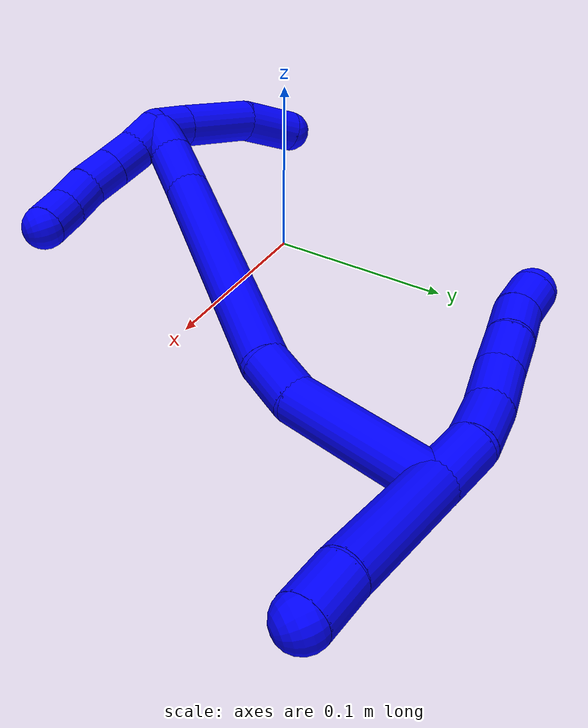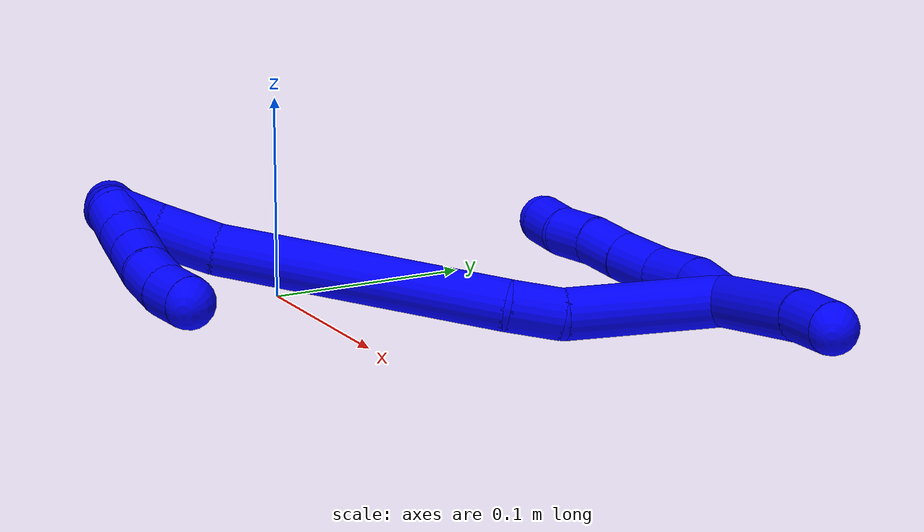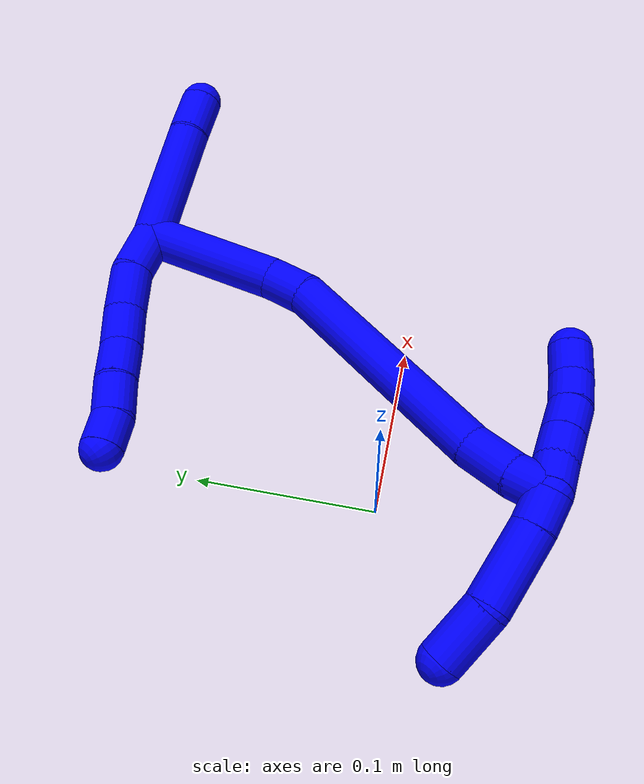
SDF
<sdf version="1.7">
 <world name="default">
  <model name="1">
   <static>0</static>
   <link name="1">
    <collision name="collision-cylinder-e_1_2_8">
     <pose>-0.004141 -0.004896 0.01321 0.354913 -0.285854 -0.051606</pose>
     <geometry><cylinder><radius>0.0125</radius><length>0.029368</length></cylinder></geometry>
     <surface>
      <friction><ode><mu>1.16</mu><mu2>1.16</mu2><slip1>0</slip1><slip2>0</slip2></ode></friction>
      <contact><ode><kp>1e+06</kp><kd>1</kd><max_vel>0</max_vel><min_depth>0.001</min_depth></ode></contact>
     </surface>
    </collision>
    <visual name="visual-cylinder-e_1_2_8">
     <pose>-0.004141 -0.004896 0.01321 0.354913 -0.285854 -0.051606</pose>
     <geometry><cylinder><radius>0.0125</radius><length>0.029368</length></cylinder></geometry>
     <material><ambient>0 0 1 1</ambient></material>
    </visual>
    <collision name="collision-cylinder-e_2_8_9">
     <pose>-0.014792 -0.017043 0.036836 0.608167 -0.473989 -0.151305</pose>
     <geometry><cylinder><radius>0.0125</radius><length>0.028528</length></cylinder></geometry>
     <surface>
      <friction><ode><mu>1.16</mu><mu2>1.16</mu2><slip1>0</slip1><slip2>0</slip2></ode></friction>
      <contact><ode><kp>1e+06</kp><kd>1</kd><max_vel>0</max_vel><min_depth>0.001</min_depth></ode></contact>
     </surface>
    </collision>
    <visual name="visual-cylinder-e_2_8_9">
     <pose>-0.014792 -0.017043 0.036836 0.608167 -0.473989 -0.151305</pose>
     <geometry><cylinder><radius>0.0125</radius><length>0.028528</length></cylinder></geometry>
     <material><ambient>0 0 1 1</ambient></material>
    </visual>
    <collision name="collision-cylinder-e_3_9_10">
     <pose>-0.025743 -0.032513 0.05612 0.747425 -0.351965 -0.139237</pose>
     <geometry><cylinder><radius>0.0125</radius><length>0.02576</length></cylinder></geometry>
     <surface>
      <friction><ode><mu>1.16</mu><mu2>1.16</mu2><slip1>0</slip1><slip2>0</slip2></ode></friction>
      <contact><ode><kp>1e+06</kp><kd>1</kd><max_vel>0</max_vel><min_depth>0.001</min_depth></ode></contact>
     </surface>
    </collision>
    <visual name="visual-cylinder-e_3_9_10">
     <pose>-0.025743 -0.032513 0.05612 0.747425 -0.351965 -0.139237</pose>
     <geometry><cylinder><radius>0.0125</radius><length>0.02576</length></cylinder></geometry>
     <material><ambient>0 0 1 1</ambient></material>
    </visual>
    <collision name="collision-cylinder-e_4_10_11">
     <pose>-0.033569 -0.048031 0.073289 0.721276 -0.297239 -0.112811</pose>
     <geometry><cylinder><radius>0.0125</radius><length>0.023123</length></cylinder></geometry>
     <surface>
      <friction><ode><mu>1.16</mu><mu2>1.16</mu2><slip1>0</slip1><slip2>0</slip2></ode></friction>
      <contact><ode><kp>1e+06</kp><kd>1</kd><max_vel>0</max_vel><min_depth>0.001</min_depth></ode></contact>
     </surface>
    </collision>
    <visual name="visual-cylinder-e_4_10_11">
     <pose>-0.033569 -0.048031 0.073289 0.721276 -0.297239 -0.112811</pose>
     <geometry><cylinder><radius>0.0125</radius><length>0.023123</length></cylinder></geometry>
     <material><ambient>0 0 1 1</ambient></material>
    </visual>
    <collision name="collision-cylinder-e_5_11_12">
     <pose>-0.041846 -0.062273 0.089373 0.72838 -0.438575 -0.169508</pose>
     <geometry><cylinder><radius>0.0125</radius><length>0.023035</length></cylinder></geometry>
     <surface>
      <friction><ode><mu>1.16</mu><mu2>1.16</mu2><slip1>0</slip1><slip2>0</slip2></ode></friction>
      <contact><ode><kp>1e+06</kp><kd>1</kd><max_vel>0</max_vel><min_depth>0.001</min_depth></ode></contact>
     </surface>
    </collision>
    <visual name="visual-cylinder-e_5_11_12">
     <pose>-0.041846 -0.062273 0.089373 0.72838 -0.438575 -0.169508</pose>
     <geometry><cylinder><radius>0.0125</radius><length>0.023035</length></cylinder></geometry>
     <material><ambient>0 0 1 1</ambient></material>
    </visual>
    <collision name="collision-cylinder-e_6_12_6">
     <pose>-0.049839 -0.073926 0.105523 0.512827 -0.31233 -0.082513</pose>
     <geometry><cylinder><radius>0.0125</radius><length>0.020185</length></cylinder></geometry>
     <surface>
      <friction><ode><mu>1.16</mu><mu2>1.16</mu2><slip1>0</slip1><slip2>0</slip2></ode></friction>
      <contact><ode><kp>1e+06</kp><kd>1</kd><max_vel>0</max_vel><min_depth>0.001</min_depth></ode></contact>
     </surface>
    </collision>
    <visual name="visual-cylinder-e_6_12_6">
     <pose>-0.049839 -0.073926 0.105523 0.512827 -0.31233 -0.082513</pose>
     <geometry><cylinder><radius>0.0125</radius><length>0.020185</length></cylinder></geometry>
     <material><ambient>0 0 1 1</ambient></material>
    </visual>
    <collision name="collision-cylinder-e_1_2_13">
     <pose>0.018049 0.01133 -0.030095 -2.78152 0.511451 -1.92533</pose>
     <geometry><cylinder><radius>0.0125</radius><length>0.073752</length></cylinder></geometry>
     <surface>
      <friction><ode><mu>1.16</mu><mu2>1.16</mu2><slip1>0</slip1><slip2>0</slip2></ode></friction>
      <contact><ode><kp>1e+06</kp><kd>1</kd><max_vel>0</max_vel><min_depth>0.001</min_depth></ode></contact>
     </surface>
    </collision>
    <visual name="visual-cylinder-e_1_2_13">
     <pose>0.018049 0.01133 -0.030095 -2.78152 0.511451 -1.92533</pose>
     <geometry><cylinder><radius>0.0125</radius><length>0.073752</length></cylinder></geometry>
     <material><ambient>0 0 1 1</ambient></material>
    </visual>
    <collision name="collision-cylinder-e_2_13_5">
     <pose>0.041257 0.027538 -0.071227 -2.72546 0.40408 -1.54057</pose>
     <geometry><cylinder><radius>0.0125</radius><length>0.026248</length></cylinder></geometry>
     <surface>
      <friction><ode><mu>1.16</mu><mu2>1.16</mu2><slip1>0</slip1><slip2>0</slip2></ode></friction>
      <contact><ode><kp>1e+06</kp><kd>1</kd><max_vel>0</max_vel><min_depth>0.001</min_depth></ode></contact>
     </surface>
    </collision>
    <visual name="visual-cylinder-e_2_13_5">
     <pose>0.041257 0.027538 -0.071227 -2.72546 0.40408 -1.54057</pose>
     <geometry><cylinder><radius>0.0125</radius><length>0.026248</length></cylinder></geometry>
     <material><ambient>0 0 1 1</ambient></material>
    </visual>
    <collision name="collision-cylinder-e_1_2_14">
     <pose>-0.015669 -0.033498 -0.015317 1.99967 -0.402208 -0.614643</pose>
     <geometry><cylinder><radius>0.0125</radius><length>0.080056</length></cylinder></geometry>
     <surface>
      <friction><ode><mu>1.16</mu><mu2>1.16</mu2><slip1>0</slip1><slip2>0</slip2></ode></friction>
      <contact><ode><kp>1e+06</kp><kd>1</kd><max_vel>0</max_vel><min_depth>0.001</min_depth></ode></contact>
     </surface>
    </collision>
    <visual name="visual-cylinder-e_1_2_14">
     <pose>-0.015669 -0.033498 -0.015317 1.99967 -0.402208 -0.614643</pose>
     <geometry><cylinder><radius>0.0125</radius><length>0.080056</length></cylinder></geometry>
     <material><ambient>0 0 1 1</ambient></material>
    </visual>
    <collision name="collision-cylinder-e_2_14_15">
     <pose>-0.034972 -0.079426 -0.032543 1.72318 -0.281332 -0.327068</pose>
     <geometry><cylinder><radius>0.0125</radius><length>0.026181</length></cylinder></geometry>
     <surface>
      <friction><ode><mu>1.16</mu><mu2>1.16</mu2><slip1>0</slip1><slip2>0</slip2></ode></friction>
      <contact><ode><kp>1e+06</kp><kd>1</kd><max_vel>0</max_vel><min_depth>0.001</min_depth></ode></contact>
     </surface>
    </collision>
    <visual name="visual-cylinder-e_2_14_15">
     <pose>-0.034972 -0.079426 -0.032543 1.72318 -0.281332 -0.327068</pose>
     <geometry><cylinder><radius>0.0125</radius><length>0.026181</length></cylinder></geometry>
     <material><ambient>0 0 1 1</ambient></material>
    </visual>
    <collision name="collision-cylinder-e_3_15_16">
     <pose>-0.063985 -0.157492 -0.027075 1.45888 -0.366835 -0.328653</pose>
     <geometry><cylinder><radius>0.0125</radius><length>0.141514</length></cylinder></geometry>
     <surface>
      <friction><ode><mu>1.16</mu><mu2>1.16</mu2><slip1>0</slip1><slip2>0</slip2></ode></friction>
      <contact><ode><kp>1e+06</kp><kd>1</kd><max_vel>0</max_vel><min_depth>0.001</min_depth></ode></contact>
     </surface>
    </collision>
    <visual name="visual-cylinder-e_3_15_16">
     <pose>-0.063985 -0.157492 -0.027075 1.45888 -0.366835 -0.328653</pose>
     <geometry><cylinder><radius>0.0125</radius><length>0.141514</length></cylinder></geometry>
     <material><ambient>0 0 1 1</ambient></material>
    </visual>
    <collision name="collision-cylinder-e_4_16_17">
     <pose>-0.092308 -0.238166 -0.018782 1.50994 -0.193067 -0.181725</pose>
     <geometry><cylinder><radius>0.0125</radius><length>0.030703</length></cylinder></geometry>
     <surface>
      <friction><ode><mu>1.16</mu><mu2>1.16</mu2><slip1>0</slip1><slip2>0</slip2></ode></friction>
      <contact><ode><kp>1e+06</kp><kd>1</kd><max_vel>0</max_vel><min_depth>0.001</min_depth></ode></contact>
     </surface>
    </collision>
    <visual name="visual-cylinder-e_4_16_17">
     <pose>-0.092308 -0.238166 -0.018782 1.50994 -0.193067 -0.181725</pose>
     <geometry><cylinder><radius>0.0125</radius><length>0.030703</length></cylinder></geometry>
     <material><ambient>0 0 1 1</ambient></material>
    </visual>
    <collision name="collision-cylinder-e_5_17_1">
     <pose>-0.096383 -0.26391 -0.018278 1.60925 -0.105057 -0.109168</pose>
     <geometry><cylinder><radius>0.0125</radius><length>0.021547</length></cylinder></geometry>
     <surface>
      <friction><ode><mu>1.16</mu><mu2>1.16</mu2><slip1>0</slip1><slip2>0</slip2></ode></friction>
      <contact><ode><kp>1e+06</kp><kd>1</kd><max_vel>0</max_vel><min_depth>0.001</min_depth></ode></contact>
     </surface>
    </collision>
    <visual name="visual-cylinder-e_5_17_1">
     <pose>-0.096383 -0.26391 -0.018278 1.60925 -0.105057 -0.109168</pose>
     <geometry><cylinder><radius>0.0125</radius><length>0.021547</length></cylinder></geometry>
     <material><ambient>0 0 1 1</ambient></material>
    </visual>
    <collision name="collision-cylinder-e_1_1_18">
     <pose>-0.101948 -0.275699 -0.009728 0.120262 -0.456731 -0.027983</pose>
     <geometry><cylinder><radius>0.0125</radius><length>0.020115</length></cylinder></geometry>
     <surface>
      <friction><ode><mu>1.16</mu><mu2>1.16</mu2><slip1>0</slip1><slip2>0</slip2></ode></friction>
      <contact><ode><kp>1e+06</kp><kd>1</kd><max_vel>0</max_vel><min_depth>0.001</min_depth></ode></contact>
     </surface>
    </collision>
    <visual name="visual-cylinder-e_1_1_18">
     <pose>-0.101948 -0.275699 -0.009728 0.120262 -0.456731 -0.027983</pose>
     <geometry><cylinder><radius>0.0125</radius><length>0.020115</length></cylinder></geometry>
     <material><ambient>0 0 1 1</ambient></material>
    </visual>
    <collision name="collision-cylinder-e_2_18_19">
     <pose>-0.115433 -0.277453 0.02024 0.031904 -0.406561 -0.006577</pose>
     <geometry><cylinder><radius>0.0125</radius><length>0.045767</length></cylinder></geometry>
     <surface>
      <friction><ode><mu>1.16</mu><mu2>1.16</mu2><slip1>0</slip1><slip2>0</slip2></ode></friction>
      <contact><ode><kp>1e+06</kp><kd>1</kd><max_vel>0</max_vel><min_depth>0.001</min_depth></ode></contact>
     </surface>
    </collision>
    <visual name="visual-cylinder-e_2_18_19">
     <pose>-0.115433 -0.277453 0.02024 0.031904 -0.406561 -0.006577</pose>
     <geometry><cylinder><radius>0.0125</radius><length>0.045767</length></cylinder></geometry>
     <material><ambient>0 0 1 1</ambient></material>
    </visual>
    <collision name="collision-cylinder-e_3_19_4">
     <pose>-0.132311 -0.273828 0.055783 -0.287298 -0.476738 0.070265</pose>
     <geometry><cylinder><radius>0.0125</radius><length>0.034119</length></cylinder></geometry>
     <surface>
      <friction><ode><mu>1.16</mu><mu2>1.16</mu2><slip1>0</slip1><slip2>0</slip2></ode></friction>
      <contact><ode><kp>1e+06</kp><kd>1</kd><max_vel>0</max_vel><min_depth>0.001</min_depth></ode></contact>
     </surface>
    </collision>
    <visual name="visual-cylinder-e_3_19_4">
     <pose>-0.132311 -0.273828 0.055783 -0.287298 -0.476738 0.070265</pose>
     <geometry><cylinder><radius>0.0125</radius><length>0.034119</length></cylinder></geometry>
     <material><ambient>0 0 1 1</ambient></material>
    </visual>
    <collision name="collision-cylinder-e_1_1_20">
     <pose>-0.096905 -0.269808 -0.027437 -2.63899 0.060858 -0.236025</pose>
     <geometry><cylinder><radius>0.0125</radius><length>0.02</length></cylinder></geometry>
     <surface>
      <friction><ode><mu>1.16</mu><mu2>1.16</mu2><slip1>0</slip1><slip2>0</slip2></ode></friction>
      <contact><ode><kp>1e+06</kp><kd>1</kd><max_vel>0</max_vel><min_depth>0.001</min_depth></ode></contact>
     </surface>
    </collision>
    <visual name="visual-cylinder-e_1_1_20">
     <pose>-0.096905 -0.269808 -0.027437 -2.63899 0.060858 -0.236025</pose>
     <geometry><cylinder><radius>0.0125</radius><length>0.02</length></cylinder></geometry>
     <material><ambient>0 0 1 1</ambient></material>
    </visual>
    <collision name="collision-cylinder-e_2_20_21">
     <pose>-0.094801 -0.260728 -0.045101 -2.69484 0.150065 -0.639147</pose>
     <geometry><cylinder><radius>0.0125</radius><length>0.02</length></cylinder></geometry>
     <surface>
      <friction><ode><mu>1.16</mu><mu2>1.16</mu2><slip1>0</slip1><slip2>0</slip2></ode></friction>
      <contact><ode><kp>1e+06</kp><kd>1</kd><max_vel>0</max_vel><min_depth>0.001</min_depth></ode></contact>
     </surface>
    </collision>
    <visual name="visual-cylinder-e_2_20_21">
     <pose>-0.094801 -0.260728 -0.045101 -2.69484 0.150065 -0.639147</pose>
     <geometry><cylinder><radius>0.0125</radius><length>0.02</length></cylinder></geometry>
     <material><ambient>0 0 1 1</ambient></material>
    </visual>
    <collision name="collision-cylinder-e_3_21_22">
     <pose>-0.091785 -0.252274 -0.062973 -2.70464 0.152768 -0.663915</pose>
     <geometry><cylinder><radius>0.0125</radius><length>0.02</length></cylinder></geometry>
     <surface>
      <friction><ode><mu>1.16</mu><mu2>1.16</mu2><slip1>0</slip1><slip2>0</slip2></ode></friction>
      <contact><ode><kp>1e+06</kp><kd>1</kd><max_vel>0</max_vel><min_depth>0.001</min_depth></ode></contact>
     </surface>
    </collision>
    <visual name="visual-cylinder-e_3_21_22">
     <pose>-0.091785 -0.252274 -0.062973 -2.70464 0.152768 -0.663915</pose>
     <geometry><cylinder><radius>0.0125</radius><length>0.02</length></cylinder></geometry>
     <material><ambient>0 0 1 1</ambient></material>
    </visual>
    <collision name="collision-cylinder-e_4_22_23">
     <pose>-0.088408 -0.242485 -0.079999 -2.53448 0.186569 -0.580483</pose>
     <geometry><cylinder><radius>0.0125</radius><length>0.02</length></cylinder></geometry>
     <surface>
      <friction><ode><mu>1.16</mu><mu2>1.16</mu2><slip1>0</slip1><slip2>0</slip2></ode></friction>
      <contact><ode><kp>1e+06</kp><kd>1</kd><max_vel>0</max_vel><min_depth>0.001</min_depth></ode></contact>
     </surface>
    </collision>
    <visual name="visual-cylinder-e_4_22_23">
     <pose>-0.088408 -0.242485 -0.079999 -2.53448 0.186569 -0.580483</pose>
     <geometry><cylinder><radius>0.0125</radius><length>0.02</length></cylinder></geometry>
     <material><ambient>0 0 1 1</ambient></material>
    </visual>
    <collision name="collision-cylinder-e_5_23_3">
     <pose>-0.082898 -0.231315 -0.095531 -2.50084 0.374193 -1.03696</pose>
     <geometry><cylinder><radius>0.0125</radius><length>0.02</length></cylinder></geometry>
     <surface>
      <friction><ode><mu>1.16</mu><mu2>1.16</mu2><slip1>0</slip1><slip2>0</slip2></ode></friction>
      <contact><ode><kp>1e+06</kp><kd>1</kd><max_vel>0</max_vel><min_depth>0.001</min_depth></ode></contact>
     </surface>
    </collision>
    <visual name="visual-cylinder-e_5_23_3">
     <pose>-0.082898 -0.231315 -0.095531 -2.50084 0.374193 -1.03696</pose>
     <geometry><cylinder><radius>0.0125</radius><length>0.02</length></cylinder></geometry>
     <material><ambient>0 0 1 1</ambient></material>
    </visual>
    <collision name="collision-sphere-3">
     <pose>-0.079243 -0.225751 -0.102993 0 -0 0</pose>
     <geometry><sphere><radius>0.0125</radius></sphere></geometry>
     <surface>
      <friction><ode><mu>1.16</mu><mu2>1.16</mu2><slip1>0</slip1><slip2>0</slip2></ode></friction>
      <contact><ode><kp>1e+06</kp><kd>1</kd><max_vel>0</max_vel><min_depth>0.001</min_depth></ode></contact>
     </surface>
    </collision>
    <visual name="visual-sphere-3">
     <pose>-0.079243 -0.225751 -0.102993 0 -0 0</pose>
     <geometry><sphere><radius>0.0125</radius></sphere></geometry>
     <material><ambient>0 0 1 1</ambient></material>
    </visual>
    <collision name="collision-sphere-23">
     <pose>-0.086553 -0.236879 -0.088069 0 -0 0</pose>
     <geometry><sphere><radius>0.0125</radius></sphere></geometry>
     <surface>
      <friction><ode><mu>1.16</mu><mu2>1.16</mu2><slip1>0</slip1><slip2>0</slip2></ode></friction>
      <contact><ode><kp>1e+06</kp><kd>1</kd><max_vel>0</max_vel><min_depth>0.001</min_depth></ode></contact>
     </surface>
    </collision>
    <visual name="visual-sphere-23">
     <pose>-0.086553 -0.236879 -0.088069 0 -0 0</pose>
     <geometry><sphere><radius>0.0125</radius></sphere></geometry>
     <material><ambient>0 0 1 1</ambient></material>
    </visual>
    <collision name="collision-sphere-22">
     <pose>-0.090263 -0.248091 -0.071928 0 -0 0</pose>
     <geometry><sphere><radius>0.0125</radius></sphere></geometry>
     <surface>
      <friction><ode><mu>1.16</mu><mu2>1.16</mu2><slip1>0</slip1><slip2>0</slip2></ode></friction>
      <contact><ode><kp>1e+06</kp><kd>1</kd><max_vel>0</max_vel><min_depth>0.001</min_depth></ode></contact>
     </surface>
    </collision>
    <visual name="visual-sphere-22">
     <pose>-0.090263 -0.248091 -0.071928 0 -0 0</pose>
     <geometry><sphere><radius>0.0125</radius></sphere></geometry>
     <material><ambient>0 0 1 1</ambient></material>
    </visual>
    <collision name="collision-sphere-21">
     <pose>-0.093306 -0.256456 -0.054018 0 -0 0</pose>
     <geometry><sphere><radius>0.0125</radius></sphere></geometry>
     <surface>
      <friction><ode><mu>1.16</mu><mu2>1.16</mu2><slip1>0</slip1><slip2>0</slip2></ode></friction>
      <contact><ode><kp>1e+06</kp><kd>1</kd><max_vel>0</max_vel><min_depth>0.001</min_depth></ode></contact>
     </surface>
    </collision>
    <visual name="visual-sphere-21">
     <pose>-0.093306 -0.256456 -0.054018 0 -0 0</pose>
     <geometry><sphere><radius>0.0125</radius></sphere></geometry>
     <material><ambient>0 0 1 1</ambient></material>
    </visual>
    <collision name="collision-sphere-20">
     <pose>-0.096296 -0.265 -0.036184 0 -0 0</pose>
     <geometry><sphere><radius>0.0125</radius></sphere></geometry>
     <surface>
      <friction><ode><mu>1.16</mu><mu2>1.16</mu2><slip1>0</slip1><slip2>0</slip2></ode></friction>
      <contact><ode><kp>1e+06</kp><kd>1</kd><max_vel>0</max_vel><min_depth>0.001</min_depth></ode></contact>
     </surface>
    </collision>
    <visual name="visual-sphere-20">
     <pose>-0.096296 -0.265 -0.036184 0 -0 0</pose>
     <geometry><sphere><radius>0.0125</radius></sphere></geometry>
     <material><ambient>0 0 1 1</ambient></material>
    </visual>
    <collision name="collision-sphere-4">
     <pose>-0.140139 -0.269533 0.070319 0 -0 0</pose>
     <geometry><sphere><radius>0.0125</radius></sphere></geometry>
     <surface>
      <friction><ode><mu>1.16</mu><mu2>1.16</mu2><slip1>0</slip1><slip2>0</slip2></ode></friction>
      <contact><ode><kp>1e+06</kp><kd>1</kd><max_vel>0</max_vel><min_depth>0.001</min_depth></ode></contact>
     </surface>
    </collision>
    <visual name="visual-sphere-4">
     <pose>-0.140139 -0.269533 0.070319 0 -0 0</pose>
     <geometry><sphere><radius>0.0125</radius></sphere></geometry>
     <material><ambient>0 0 1 1</ambient></material>
    </visual>
    <collision name="collision-sphere-12">
     <pose>-0.046737 -0.069214 0.097154 0 -0 0</pose>
     <geometry><sphere><radius>0.0125</radius></sphere></geometry>
     <surface>
      <friction><ode><mu>1.16</mu><mu2>1.16</mu2><slip1>0</slip1><slip2>0</slip2></ode></friction>
      <contact><ode><kp>1e+06</kp><kd>1</kd><max_vel>0</max_vel><min_depth>0.001</min_depth></ode></contact>
     </surface>
    </collision>
    <visual name="visual-sphere-12">
     <pose>-0.046737 -0.069214 0.097154 0 -0 0</pose>
     <geometry><sphere><radius>0.0125</radius></sphere></geometry>
     <material><ambient>0 0 1 1</ambient></material>
    </visual>
    <collision name="collision-sphere-11">
     <pose>-0.036955 -0.055331 0.081591 0 -0 0</pose>
     <geometry><sphere><radius>0.0125</radius></sphere></geometry>
     <surface>
      <friction><ode><mu>1.16</mu><mu2>1.16</mu2><slip1>0</slip1><slip2>0</slip2></ode></friction>
      <contact><ode><kp>1e+06</kp><kd>1</kd><max_vel>0</max_vel><min_depth>0.001</min_depth></ode></contact>
     </surface>
    </collision>
    <visual name="visual-sphere-11">
     <pose>-0.036955 -0.055331 0.081591 0 -0 0</pose>
     <geometry><sphere><radius>0.0125</radius></sphere></geometry>
     <material><ambient>0 0 1 1</ambient></material>
    </visual>
    <collision name="collision-sphere-10">
     <pose>-0.030183 -0.040731 0.064987 0 -0 0</pose>
     <geometry><sphere><radius>0.0125</radius></sphere></geometry>
     <surface>
      <friction><ode><mu>1.16</mu><mu2>1.16</mu2><slip1>0</slip1><slip2>0</slip2></ode></friction>
      <contact><ode><kp>1e+06</kp><kd>1</kd><max_vel>0</max_vel><min_depth>0.001</min_depth></ode></contact>
     </surface>
    </collision>
    <visual name="visual-sphere-10">
     <pose>-0.030183 -0.040731 0.064987 0 -0 0</pose>
     <geometry><sphere><radius>0.0125</radius></sphere></geometry>
     <material><ambient>0 0 1 1</ambient></material>
    </visual>
    <collision name="collision-sphere-9">
     <pose>-0.021302 -0.024294 0.047252 0 -0 0</pose>
     <geometry><sphere><radius>0.0125</radius></sphere></geometry>
     <surface>
      <friction><ode><mu>1.16</mu><mu2>1.16</mu2><slip1>0</slip1><slip2>0</slip2></ode></friction>
      <contact><ode><kp>1e+06</kp><kd>1</kd><max_vel>0</max_vel><min_depth>0.001</min_depth></ode></contact>
     </surface>
    </collision>
    <visual name="visual-sphere-9">
     <pose>-0.021302 -0.024294 0.047252 0 -0 0</pose>
     <geometry><sphere><radius>0.0125</radius></sphere></geometry>
     <material><ambient>0 0 1 1</ambient></material>
    </visual>
    <collision name="collision-sphere-2">
     <geometry><sphere><radius>0.0125</radius></sphere></geometry>
     <surface>
      <friction><ode><mu>1.16</mu><mu2>1.16</mu2><slip1>0</slip1><slip2>0</slip2></ode></friction>
      <contact><ode><kp>1e+06</kp><kd>1</kd><max_vel>0</max_vel><min_depth>0.001</min_depth></ode></contact>
     </surface>
    </collision>
    <visual name="visual-sphere-2">
     <geometry><sphere><radius>0.0125</radius></sphere></geometry>
     <material><ambient>0 0 1 1</ambient></material>
    </visual>
    <collision name="collision-sphere-19">
     <pose>-0.124482 -0.278123 0.041248 0 -0 0</pose>
     <geometry><sphere><radius>0.0125</radius></sphere></geometry>
     <surface>
      <friction><ode><mu>1.16</mu><mu2>1.16</mu2><slip1>0</slip1><slip2>0</slip2></ode></friction>
      <contact><ode><kp>1e+06</kp><kd>1</kd><max_vel>0</max_vel><min_depth>0.001</min_depth></ode></contact>
     </surface>
    </collision>
    <visual name="visual-sphere-19">
     <pose>-0.124482 -0.278123 0.041248 0 -0 0</pose>
     <geometry><sphere><radius>0.0125</radius></sphere></geometry>
     <material><ambient>0 0 1 1</ambient></material>
    </visual>
    <collision name="collision-sphere-8">
     <pose>-0.008281 -0.009792 0.026421 0 -0 0</pose>
     <geometry><sphere><radius>0.0125</radius></sphere></geometry>
     <surface>
      <friction><ode><mu>1.16</mu><mu2>1.16</mu2><slip1>0</slip1><slip2>0</slip2></ode></friction>
      <contact><ode><kp>1e+06</kp><kd>1</kd><max_vel>0</max_vel><min_depth>0.001</min_depth></ode></contact>
     </surface>
    </collision>
    <visual name="visual-sphere-8">
     <pose>-0.008281 -0.009792 0.026421 0 -0 0</pose>
     <geometry><sphere><radius>0.0125</radius></sphere></geometry>
     <material><ambient>0 0 1 1</ambient></material>
    </visual>
    <collision name="collision-sphere-6">
     <pose>-0.05294 -0.078638 0.113892 0 -0 0</pose>
     <geometry><sphere><radius>0.0125</radius></sphere></geometry>
     <surface>
      <friction><ode><mu>1.16</mu><mu2>1.16</mu2><slip1>0</slip1><slip2>0</slip2></ode></friction>
      <contact><ode><kp>1e+06</kp><kd>1</kd><max_vel>0</max_vel><min_depth>0.001</min_depth></ode></contact>
     </surface>
    </collision>
    <visual name="visual-sphere-6">
     <pose>-0.05294 -0.078638 0.113892 0 -0 0</pose>
     <geometry><sphere><radius>0.0125</radius></sphere></geometry>
     <material><ambient>0 0 1 1</ambient></material>
    </visual>
    <collision name="collision-sphere-13">
     <pose>0.036097 0.02266 -0.06019 0 -0 0</pose>
     <geometry><sphere><radius>0.0125</radius></sphere></geometry>
     <surface>
      <friction><ode><mu>1.16</mu><mu2>1.16</mu2><slip1>0</slip1><slip2>0</slip2></ode></friction>
      <contact><ode><kp>1e+06</kp><kd>1</kd><max_vel>0</max_vel><min_depth>0.001</min_depth></ode></contact>
     </surface>
    </collision>
    <visual name="visual-sphere-13">
     <pose>0.036097 0.02266 -0.06019 0 -0 0</pose>
     <geometry><sphere><radius>0.0125</radius></sphere></geometry>
     <material><ambient>0 0 1 1</ambient></material>
    </visual>
    <collision name="collision-sphere-5">
     <pose>0.046417 0.032416 -0.082265 0 -0 0</pose>
     <geometry><sphere><radius>0.0125</radius></sphere></geometry>
     <surface>
      <friction><ode><mu>1.16</mu><mu2>1.16</mu2><slip1>0</slip1><slip2>0</slip2></ode></friction>
      <contact><ode><kp>1e+06</kp><kd>1</kd><max_vel>0</max_vel><min_depth>0.001</min_depth></ode></contact>
     </surface>
    </collision>
    <visual name="visual-sphere-5">
     <pose>0.046417 0.032416 -0.082265 0 -0 0</pose>
     <geometry><sphere><radius>0.0125</radius></sphere></geometry>
     <material><ambient>0 0 1 1</ambient></material>
    </visual>
    <collision name="collision-sphere-14">
     <pose>-0.031338 -0.066996 -0.030634 0 -0 0</pose>
     <geometry><sphere><radius>0.0125</radius></sphere></geometry>
     <surface>
      <friction><ode><mu>1.16</mu><mu2>1.16</mu2><slip1>0</slip1><slip2>0</slip2></ode></friction>
      <contact><ode><kp>1e+06</kp><kd>1</kd><max_vel>0</max_vel><min_depth>0.001</min_depth></ode></contact>
     </surface>
    </collision>
    <visual name="visual-sphere-14">
     <pose>-0.031338 -0.066996 -0.030634 0 -0 0</pose>
     <geometry><sphere><radius>0.0125</radius></sphere></geometry>
     <material><ambient>0 0 1 1</ambient></material>
    </visual>
    <collision name="collision-sphere-15">
     <pose>-0.038607 -0.091856 -0.034452 0 -0 0</pose>
     <geometry><sphere><radius>0.0125</radius></sphere></geometry>
     <surface>
      <friction><ode><mu>1.16</mu><mu2>1.16</mu2><slip1>0</slip1><slip2>0</slip2></ode></friction>
      <contact><ode><kp>1e+06</kp><kd>1</kd><max_vel>0</max_vel><min_depth>0.001</min_depth></ode></contact>
     </surface>
    </collision>
    <visual name="visual-sphere-15">
     <pose>-0.038607 -0.091856 -0.034452 0 -0 0</pose>
     <geometry><sphere><radius>0.0125</radius></sphere></geometry>
     <material><ambient>0 0 1 1</ambient></material>
    </visual>
    <collision name="collision-sphere-16">
     <pose>-0.089362 -0.223128 -0.019699 0 -0 0</pose>
     <geometry><sphere><radius>0.0125</radius></sphere></geometry>
     <surface>
      <friction><ode><mu>1.16</mu><mu2>1.16</mu2><slip1>0</slip1><slip2>0</slip2></ode></friction>
      <contact><ode><kp>1e+06</kp><kd>1</kd><max_vel>0</max_vel><min_depth>0.001</min_depth></ode></contact>
     </surface>
    </collision>
    <visual name="visual-sphere-16">
     <pose>-0.089362 -0.223128 -0.019699 0 -0 0</pose>
     <geometry><sphere><radius>0.0125</radius></sphere></geometry>
     <material><ambient>0 0 1 1</ambient></material>
    </visual>
    <collision name="collision-sphere-17">
     <pose>-0.095253 -0.253205 -0.017866 0 -0 0</pose>
     <geometry><sphere><radius>0.0125</radius></sphere></geometry>
     <surface>
      <friction><ode><mu>1.16</mu><mu2>1.16</mu2><slip1>0</slip1><slip2>0</slip2></ode></friction>
      <contact><ode><kp>1e+06</kp><kd>1</kd><max_vel>0</max_vel><min_depth>0.001</min_depth></ode></contact>
     </surface>
    </collision>
    <visual name="visual-sphere-17">
     <pose>-0.095253 -0.253205 -0.017866 0 -0 0</pose>
     <geometry><sphere><radius>0.0125</radius></sphere></geometry>
     <material><ambient>0 0 1 1</ambient></material>
    </visual>
    <collision name="collision-sphere-1">
     <pose>-0.097513 -0.274616 -0.01869 0 -0 0</pose>
     <geometry><sphere><radius>0.0125</radius></sphere></geometry>
     <surface>
      <friction><ode><mu>1.16</mu><mu2>1.16</mu2><slip1>0</slip1><slip2>0</slip2></ode></friction>
      <contact><ode><kp>1e+06</kp><kd>1</kd><max_vel>0</max_vel><min_depth>0.001</min_depth></ode></contact>
     </surface>
    </collision>
    <visual name="visual-sphere-1">
     <pose>-0.097513 -0.274616 -0.01869 0 -0 0</pose>
     <geometry><sphere><radius>0.0125</radius></sphere></geometry>
     <material><ambient>0 0 1 1</ambient></material>
    </visual>
    <collision name="collision-sphere-18">
     <pose>-0.106384 -0.276782 -0.000767 0 -0 0</pose>
     <geometry><sphere><radius>0.0125</radius></sphere></geometry>
     <surface>
      <friction><ode><mu>1.16</mu><mu2>1.16</mu2><slip1>0</slip1><slip2>0</slip2></ode></friction>
      <contact><ode><kp>1e+06</kp><kd>1</kd><max_vel>0</max_vel><min_depth>0.001</min_depth></ode></contact>
     </surface>
    </collision>
    <visual name="visual-sphere-18">
     <pose>-0.106384 -0.276782 -0.000767 0 -0 0</pose>
     <geometry><sphere><radius>0.0125</radius></sphere></geometry>
     <material><ambient>0 0 1 1</ambient></material>
    </visual>
    <inertial>
     <pose>-0.051491 -0.128949 -0.007718 0 -0 0</pose>
     <mass>0.75</mass>
     <inertia>
      <ixx>0.000131</ixx>
      <ixy>0</ixy>
      <ixz>0</ixz>
      <iyy>-6.9e-05</iyy>
      <iyz>0</iyz>
      <izz>0.00036</izz>
     </inertia>
    </inertial>
   </link>
   <pose>0.147472 0.164269 0.012859 -1.2757 -1.05709 0.706935</pose>
  </model>
 </world>
</sdf>
